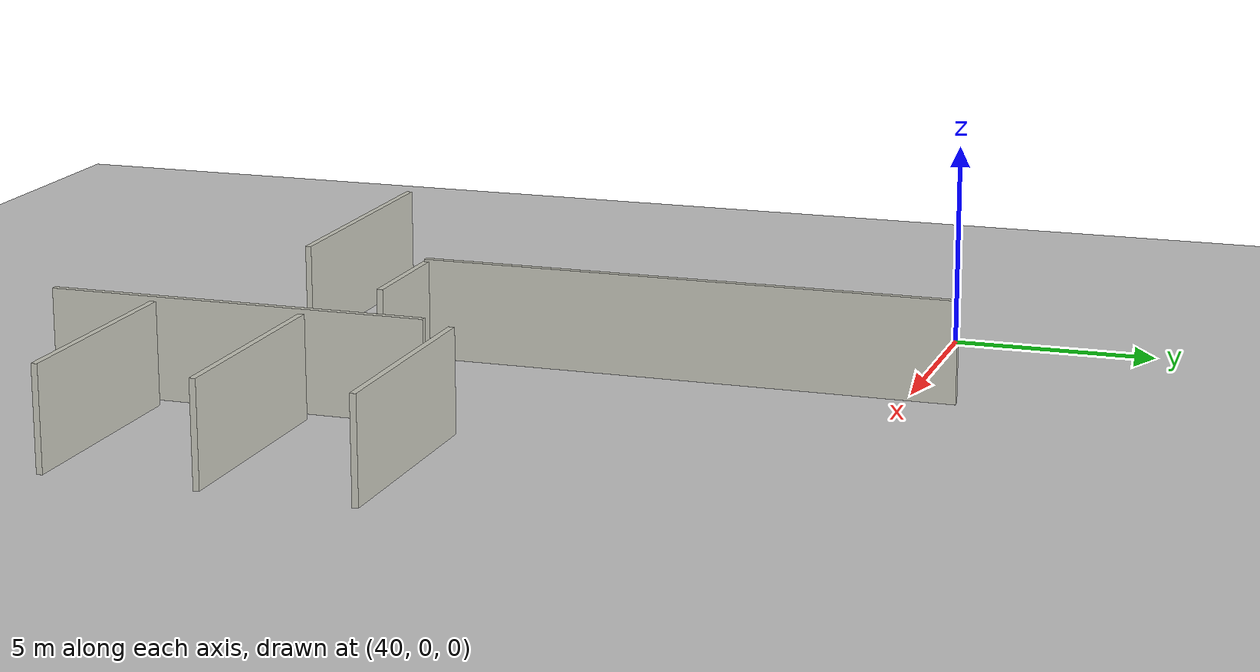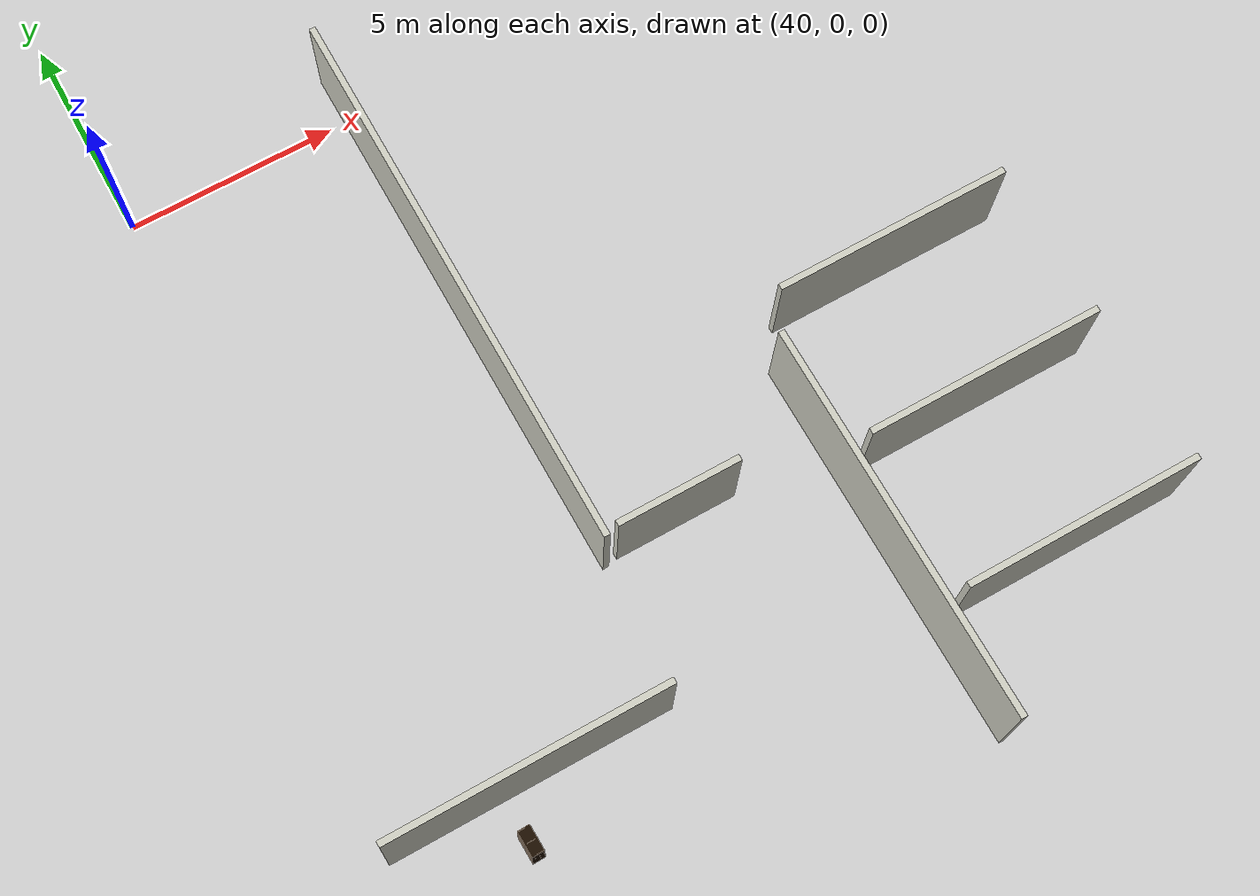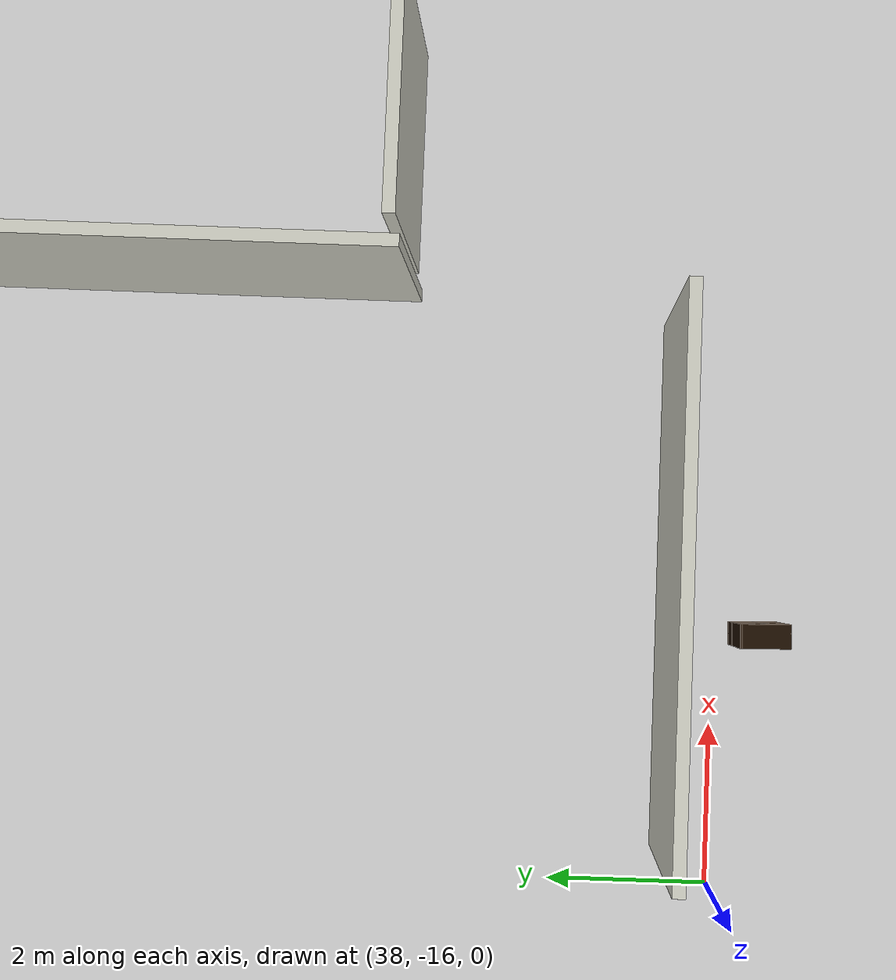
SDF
<sdf version="1.7">
 <world name="default">
  <model name="ground_plane">
   <static>1</static>
   <link name="link">
    <collision name="collision">
     <geometry><plane><normal>0 0 1</normal><size>100 100</size></plane></geometry>
     <surface><friction><ode><mu>100</mu><mu2>50</mu2></ode></friction></surface>
    </collision>
    <visual name="visual">
     <cast_shadows>0</cast_shadows>
     <geometry><plane><normal>0 0 1</normal><size>100 100</size></plane></geometry>
     <material>
      <ambient>1 1 1 1</ambient>
      <diffuse>0.8 0.8 0.8 1</diffuse>
      <specular>0.01 0.01 0.01 1</specular>
     </material>
    </visual>
   </link>
  </model>
  <model name="floorPlan">
   <pose>6.7155 -5.3556 0 0 -0 0</pose>
   <link name="Wall_111">
    <collision name="Wall_111_Collision">
     <geometry><box><size>6.66 0.15 2.5</size></box></geometry>
     <pose>0 0 1.25 0 -0 0</pose>
    </collision>
    <visual name="Wall_111_Visual">
     <pose>0 0 1.25 0 -0 0</pose>
     <geometry><box><size>6.66 0.15 2.5</size></box></geometry>
     <material>
      <script><uri>file://media/materials/scripts/gazebo.material</uri><name>Gazebo/PaintedWall</name></script>
      <ambient>1 1 1 1</ambient>
     </material>
     <meta><layer>0</layer></meta>
    </visual>
    <pose>35.079 -9.99746 0 0 -0 3.14159</pose>
   </link>
   <link name="Wall_242">
    <collision name="Wall_242_Collision">
     <geometry><box><size>5.62 0.15 2.5</size></box></geometry>
     <pose>0 0 1.25 0 -0 0</pose>
    </collision>
    <visual name="Wall_242_Visual">
     <pose>0 0 1.25 0 -0 0</pose>
     <geometry><box><size>5.62 0.15 2.5</size></box></geometry>
     <material>
      <script><uri>file://media/materials/scripts/gazebo.material</uri><name>Gazebo/PaintedWall</name></script>
      <ambient>1 1 1 1</ambient>
     </material>
     <meta><layer>0</layer></meta>
    </visual>
    <pose>47.3564 -11.1866 0 0 -0 0</pose>
   </link>
   <link name="Wall_244">
    <collision name="Wall_244_Collision">
     <geometry><box><size>5.62 0.15 2.5</size></box></geometry>
     <pose>0 0 1.25 0 -0 0</pose>
    </collision>
    <visual name="Wall_244_Visual">
     <pose>0 0 1.25 0 -0 0</pose>
     <geometry><box><size>5.62 0.15 2.5</size></box></geometry>
     <material>
      <script><uri>file://media/materials/scripts/gazebo.material</uri><name>Gazebo/PaintedWall</name></script>
      <ambient>1 1 1 1</ambient>
     </material>
     <meta><layer>0</layer></meta>
    </visual>
    <pose>47.3564 -7.44743 0 0 -0 0</pose>
   </link>
   <link name="Wall_248">
    <collision name="Wall_248_Collision">
     <geometry><box><size>13.29 0.15 2.5</size></box></geometry>
     <pose>0 0 1.25 0 -0 0</pose>
    </collision>
    <visual name="Wall_248_Visual">
     <pose>0 0 1.25 0 -0 0</pose>
     <geometry><box><size>13.29 0.15 2.5</size></box></geometry>
     <material>
      <script><uri>file://media/materials/scripts/gazebo.material</uri><name>Gazebo/PaintedWall</name></script>
      <ambient>1 1 1 1</ambient>
     </material>
     <meta><layer>0</layer></meta>
    </visual>
    <pose>38.697 -0.105323 0 0 0 -1.57178</pose>
   </link>
   <link name="Wall_78">
    <collision name="Wall_78_Collision">
     <geometry><box><size>2.92 0.15 2.5</size></box></geometry>
     <pose>0 0 1.25 0 -0 0</pose>
    </collision>
    <visual name="Wall_78_Visual">
     <pose>0 0 1.25 0 -0 0</pose>
     <geometry><box><size>2.92 0.15 2.5</size></box></geometry>
     <material>
      <script><uri>file://media/materials/scripts/gazebo.material</uri><name>Gazebo/PaintedWall</name></script>
      <ambient>1 1 1 1</ambient>
     </material>
     <meta><layer>0</layer></meta>
    </visual>
    <pose>40.4469 -6.6184 0 0 -0 0</pose>
   </link>
   <link name="Wall_80">
    <collision name="Wall_80_Collision">
     <geometry><box><size>5.62 0.15 2.5</size></box></geometry>
     <pose>0 0 1.25 0 -0 0</pose>
    </collision>
    <visual name="Wall_80_Visual">
     <pose>0 0 1.25 0 -0 0</pose>
     <geometry><box><size>5.62 0.15 2.5</size></box></geometry>
     <material>
      <script><uri>file://media/materials/scripts/gazebo.material</uri><name>Gazebo/PaintedWall</name></script>
      <ambient>1 1 1 1</ambient>
     </material>
     <meta><layer>0</layer></meta>
    </visual>
    <pose>47.3649 -3.7753 0 0 -0 0</pose>
   </link>
   <link name="Wall_83">
    <collision name="Wall_83_Collision">
     <geometry><box><size>9.37 0.15 2.5</size></box></geometry>
     <pose>0 0 1.25 0 -0 0</pose>
    </collision>
    <visual name="Wall_83_Visual">
     <pose>0 0 1.25 0 -0 0</pose>
     <geometry><box><size>9.37 0.15 2.5</size></box></geometry>
     <material>
      <script><uri>file://media/materials/scripts/gazebo.material</uri><name>Gazebo/PaintedWall</name></script>
      <ambient>1 1 1 1</ambient>
     </material>
     <meta><layer>0</layer></meta>
    </visual>
    <pose>44.0649 -9.3253 0 0 0 -1.5708</pose>
   </link>
   <static>1</static>
  </model>
  <model name="6_Cube_StorageE_clone_8_clone">
   <link name="Wall_0">
    <pose>0 0 0.01 0 -0 0</pose>
    <inertial>
     <mass>1.6201</mass>
     <inertia><ixx>0.0119</ixx><iyy>0.0631</iyy><izz>0.0513</izz><ixy>0</ixy><ixz>0</ixz><iyz>0</iyz></inertia>
    </inertial>
    <collision name="Wall_0_Collision"><geometry><box><size>0.616 0.296 0.02</size></box></geometry></collision>
    <visual name="Wall_0_Visual">
     <geometry><box><size>0.616 0.296 0.02</size></box></geometry>
     <material>
      <script><uri>file://media/materials/scripts/gazebo.material</uri><name>Gazebo/Grey</name></script>
      <ambient>0.105882 0.0509804 0 1</ambient>
     </material>
    </visual>
   </link>
   <joint name="0_2" type="fixed">
    <pose>-0.308 0 0 0 -0 0</pose>
    <parent>Wall_2</parent>
    <child>Wall_0</child>
    <axis><xyz>1 0 0</xyz><limit><lower>-1e+16</lower><upper>1e+16</upper></limit></axis>
   </joint>
   <joint name="0_12" type="fixed">
    <parent>Wall_12</parent>
    <child>Wall_0</child>
    <axis><xyz>0 0 1</xyz><limit><lower>-1e+16</lower><upper>1e+16</upper></limit></axis>
   </joint>
   <joint name="0_4" type="fixed">
    <pose>0.308 0 0 0 -0 0</pose>
    <parent>Wall_4</parent>
    <child>Wall_0</child>
    <axis><xyz>1 0 0</xyz><limit><lower>-1e+16</lower><upper>1e+16</upper></limit></axis>
   </joint>
   <link name="Wall_10">
    <pose>0 0 0.61 0 -0 0</pose>
    <inertial>
     <mass>1.6201</mass>
     <inertia><ixx>0.0119</ixx><iyy>0.0631</iyy><izz>0.0513</izz><ixy>0</ixy><ixz>0</ixz><iyz>0</iyz></inertia>
    </inertial>
    <collision name="Wall_10_Collision"><geometry><box><size>0.616 0.296 0.02</size></box></geometry></collision>
    <visual name="Wall_10_Visual">
     <geometry><box><size>0.616 0.296 0.02</size></box></geometry>
     <material>
      <script><uri>file://media/materials/scripts/gazebo.material</uri><name>Gazebo/Grey</name></script>
      <ambient>0.105882 0.0509804 0 1</ambient>
     </material>
    </visual>
   </link>
   <joint name="10_2" type="fixed">
    <pose>-0.308 0 0 0 -0 0</pose>
    <parent>Wall_2</parent>
    <child>Wall_10</child>
    <axis><xyz>1 0 0</xyz><limit><lower>-1e+16</lower><upper>1e+16</upper></limit></axis>
   </joint>
   <joint name="10_12" type="fixed">
    <parent>Wall_12</parent>
    <child>Wall_10</child>
    <axis><xyz>0 0 1</xyz><limit><lower>-1e+16</lower><upper>1e+16</upper></limit></axis>
   </joint>
   <joint name="10_4" type="fixed">
    <pose>0.308 0 0 0 -0 0</pose>
    <parent>Wall_4</parent>
    <child>Wall_10</child>
    <axis><xyz>1 0 0</xyz><limit><lower>-1e+16</lower><upper>1e+16</upper></limit></axis>
   </joint>
   <link name="Wall_12">
    <pose>0 0 0.4575 0 -0 0</pose>
    <inertial>
     <mass>2.4065</mass>
     <inertia><ixx>0.0177</ixx><iyy>0.1855</iyy><izz>0.168</izz><ixy>0</ixy><ixz>0</ixz><iyz>0</iyz></inertia>
    </inertial>
    <collision name="Wall_12_Collision"><geometry><box><size>0.02 0.296 0.915</size></box></geometry></collision>
    <visual name="Wall_12_Visual">
     <geometry><box><size>0.02 0.296 0.915</size></box></geometry>
     <material>
      <script><uri>file://media/materials/scripts/gazebo.material</uri><name>Gazebo/Grey</name></script>
      <ambient>0.105882 0.0509804 0 1</ambient>
     </material>
    </visual>
   </link>
   <link name="Wall_2">
    <pose>-0.298 0 0.4575 0 -0 0</pose>
    <inertial>
     <mass>2.4065</mass>
     <inertia><ixx>0.0177</ixx><iyy>0.1855</iyy><izz>0.168</izz><ixy>0</ixy><ixz>0</ixz><iyz>0</iyz></inertia>
    </inertial>
    <collision name="Wall_2_Collision"><geometry><box><size>0.02 0.296 0.915</size></box></geometry></collision>
    <visual name="Wall_2_Visual">
     <geometry><box><size>0.02 0.296 0.915</size></box></geometry>
     <material>
      <script><uri>file://media/materials/scripts/gazebo.material</uri><name>Gazebo/Grey</name></script>
      <ambient>0.105882 0.0509804 0 1</ambient>
     </material>
    </visual>
   </link>
   <link name="Wall_4">
    <pose>0.298 0 0.4575 0 -0 0</pose>
    <inertial>
     <mass>2.4065</mass>
     <inertia><ixx>0.0177</ixx><iyy>0.1855</iyy><izz>0.168</izz><ixy>0</ixy><ixz>0</ixz><iyz>0</iyz></inertia>
    </inertial>
    <collision name="Wall_4_Collision"><geometry><box><size>0.02 0.296 0.915</size></box></geometry></collision>
    <visual name="Wall_4_Visual">
     <geometry><box><size>0.02 0.296 0.915</size></box></geometry>
     <material>
      <script><uri>file://media/materials/scripts/gazebo.material</uri><name>Gazebo/Grey</name></script>
      <ambient>0.105882 0.0509804 0 1</ambient>
     </material>
    </visual>
   </link>
   <link name="Wall_6">
    <pose>0 0 0.905 0 -0 0</pose>
    <inertial>
     <mass>1.6201</mass>
     <inertia><ixx>0.0119</ixx><iyy>0.0631</iyy><izz>0.0513</izz><ixy>0</ixy><ixz>0</ixz><iyz>0</iyz></inertia>
    </inertial>
    <collision name="Wall_6_Collision"><geometry><box><size>0.616 0.296 0.02</size></box></geometry></collision>
    <visual name="Wall_6_Visual">
     <geometry><box><size>0.616 0.296 0.02</size></box></geometry>
     <material>
      <script><uri>file://media/materials/scripts/gazebo.material</uri><name>Gazebo/Grey</name></script>
      <ambient>0.105882 0.0509804 0 1</ambient>
     </material>
    </visual>
   </link>
   <joint name="6_2" type="fixed">
    <pose>-0.308 0 0 0 -0 0</pose>
    <parent>Wall_2</parent>
    <child>Wall_6</child>
    <axis><xyz>2 0 0</xyz><limit><lower>-1e+16</lower><upper>1e+16</upper></limit></axis>
   </joint>
   <joint name="6_12" type="fixed">
    <parent>Wall_12</parent>
    <child>Wall_6</child>
    <axis><xyz>0 0 1</xyz><limit><lower>-1e+16</lower><upper>1e+16</upper></limit></axis>
   </joint>
   <joint name="6_4" type="fixed">
    <pose>0.308 0 0 0 -0 0</pose>
    <parent>Wall_4</parent>
    <child>Wall_6</child>
    <axis><xyz>1 0 0</xyz><limit><lower>-1e+16</lower><upper>1e+16</upper></limit></axis>
   </joint>
   <link name="Wall_8">
    <pose>0 0 0.305 0 -0 0</pose>
    <inertial>
     <mass>1.6201</mass>
     <inertia><ixx>0.0119</ixx><iyy>0.0631</iyy><izz>0.0513</izz><ixy>0</ixy><ixz>0</ixz><iyz>0</iyz></inertia>
    </inertial>
    <collision name="Wall_8_Collision"><geometry><box><size>0.616 0.296 0.02</size></box></geometry></collision>
    <visual name="Wall_8_Visual">
     <geometry><box><size>0.616 0.296 0.02</size></box></geometry>
     <material>
      <script><uri>file://media/materials/scripts/gazebo.material</uri><name>Gazebo/Grey</name></script>
      <ambient>0.105882 0.0509804 0 1</ambient>
     </material>
    </visual>
   </link>
   <joint name="8_2" type="fixed">
    <pose>-0.308 0 0 0 -0 0</pose>
    <parent>Wall_2</parent>
    <child>Wall_8</child>
    <axis><xyz>1 0 0</xyz><limit><lower>-1e+16</lower><upper>1e+16</upper></limit></axis>
   </joint>
   <joint name="8_12" type="fixed">
    <parent>Wall_12</parent>
    <child>Wall_8</child>
    <axis><xyz>0 0 1</xyz><limit><lower>-1e+16</lower><upper>1e+16</upper></limit></axis>
   </joint>
   <joint name="8_4" type="fixed">
    <pose>0.308 0 0 0 -0 0</pose>
    <parent>Wall_4</parent>
    <child>Wall_8</child>
    <axis><xyz>1 0 0</xyz><limit><lower>-1e+16</lower><upper>1e+16</upper></limit></axis>
   </joint>
   <static>1</static>
   <pose>41.1791 -16.5236 0 0 0 -1.54533</pose>
  </model>
 </world>
</sdf>
